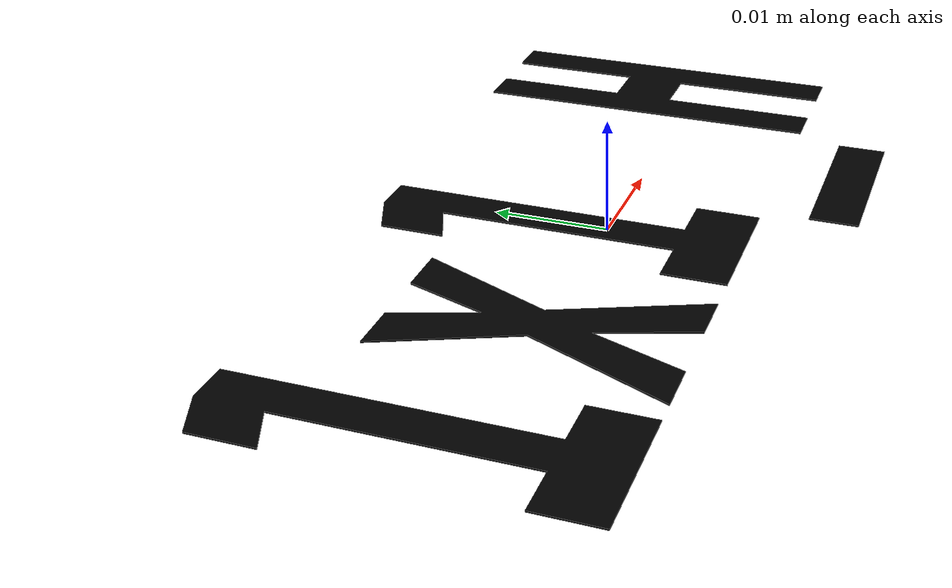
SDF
<?xml version='1.0'?>
<sdf version='1.7'>
  <model name='pad_1x1_H'>
    <link name='link'>
      <visual name='visual'>
        <geometry>
          <mesh>
            <uri>model://pad_1x1_H/mesh.stl</uri>
            <scale>0.04 0.07 0.07</scale>
          </mesh>
        </geometry>
        <material>
          <ambient>0.0 0.0 0.0 1.0</ambient>
          <diffuse>0.0 0.0 0.0 1.0</diffuse>
          <specular>0.1 0.1 0.1 1.0 5.0</specular>
        </material>
        <transparency>0</transparency>
        <cast_shadows>0</cast_shadows>
      </visual>
    </link>
    <static>1</static>
  </model>
</sdf>
